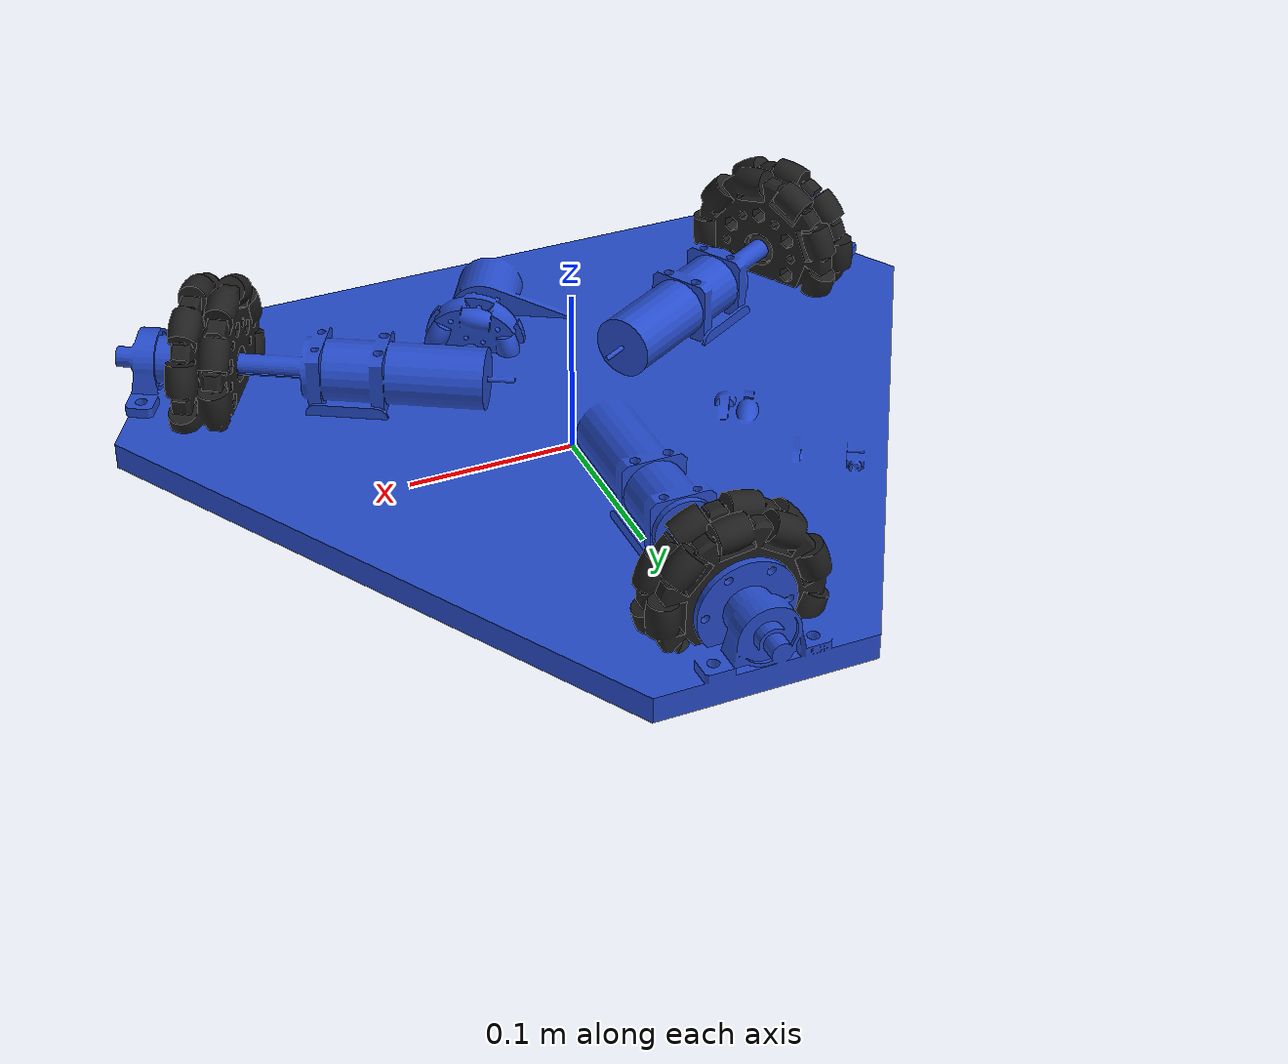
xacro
<?xml version="1.0"?>
<robot name="my_robot" xmlns:xacro="http://www.ros.org/wiki/xacro">

    <!-- Parameters -->
    <xacro:property name="base_width" value="1.0" />
    <xacro:property name="base_mass" value="3.72456877893911" />
    <xacro:property name="wheel_mass" value="0.169060280702519" />
    <xacro:property name="blue_material" value="blue" />
    <xacro:property name="black_material" value="black" />

    <!-- Base Footprint -->
    <link name="base_footprint" />

    <!-- Base Link -->
    <link name="base_link">
        <inertial>
            <origin xyz="0 0 0" rpy="0 0 0" />
            <mass value="${base_mass}" />
            <inertia
                ixx="0.00777824335300896"
                ixy="2.13589194767825E-06"
                ixz="-7.76430486977968E-07"
                iyy="0.00778071037270559"
                iyz="-4.552360831811E-07"
                izz="0.0150156106242929" />
        </inertial>
        <visual>
            <origin xyz="0 0 0" rpy="0 0 0" />
            <geometry>
                <mesh filename="package://my_robot_description/meshes/autobot/base_link.stl" />
            </geometry>
            <material name="${blue_material}" />
        </visual>
        <collision>
            <origin xyz="0 0 0" rpy="0 0 0" />
            <geometry>
                <mesh filename="package://my_robot_description/meshes/autobot/base_link.stl" />
            </geometry>
        </collision>
    </link>

    <joint name="base_joint" type="fixed">
        <parent link="base_footprint" />
        <child link="base_link" />
        <origin xyz="0 0 0.02435" rpy="0 0 0" />
    </joint>

    <!-- Right Wheel -->
    <link name="right_wheel">
        <inertial>
            <origin xyz="0.05023 0 -0.029" rpy="0 0 0" />
            <mass value="${wheel_mass}" />
            <inertia
                ixx="6.81656459654292E-05"
                ixy="1.09934718562429E-16"
                ixz="-1.53690933567199E-05"
                iyy="4.15455954052914E-05"
                iyz="1.9041723013586E-16"
                izz="5.0418945592025E-05" />
        </inertial>
        <visual>
            <origin xyz="0 0 0" rpy="0 0 0" />
            <geometry>
                <mesh filename="package://my_robot_description/meshes/autobot/right_wheel.stl" />
            </geometry>
            <material name="${black_material}" />
        </visual>
        <collision>
            <origin xyz="0 0 0" rpy="0 0 0" />
            <geometry>
                <mesh filename="package://my_robot_description/meshes/autobot/right_wheel.stl" />
            </geometry>
        </collision>
    </link>

    <joint name="rightwheel" type="continuous">
        <origin xyz="0.23043 -0.13304 0.01805" rpy="-1.5708 0 3.1416" />
        <parent link="base_link" />
        <child link="right_wheel" />
        <axis xyz="0.86603 0 -0.5" />
        <limit effort="10" velocity="10" />
        <dynamics damping="0.1" friction="0.1" />
    </joint>

    <!-- Left Wheel -->
    <link name="left_wheel">
        <inertial>
            <origin xyz="-0.05023 0 -0.029" rpy="0 0 0" />
            <mass value="${wheel_mass}" />
            <inertia
                ixx="6.816564596543E-05"
                ixy="1.09821584456127E-16"
                ixz="1.53690933567195E-05"
                iyy="4.15455954052906E-05"
                iyz="-1.90474672857433E-16"
                izz="5.04189455920233E-05" />
        </inertial>
        <visual>
            <origin xyz="0 0 0" rpy="0 0 0" />
            <geometry>
                <mesh filename="package://my_robot_description/meshes/autobot/left_wheel.stl" />
            </geometry>
            <material name="${black_material}" />
        </visual>
        <collision>
            <origin xyz="0 0 0" rpy="0 0 0" />
            <geometry>
                <mesh filename="package://my_robot_description/meshes/autobot/left_wheel.stl" />
            </geometry>
        </collision>
    </link>

    <joint name="leftwheel" type="continuous">
        <origin xyz="-0.23043 -0.13304 0.01805" rpy="-1.5708 0 3.1416" />
        <parent link="base_link" />
        <child link="left_wheel" />
        <axis xyz="-0.86603 0 -0.5" />
        <limit effort="10" velocity="10" />
        <dynamics damping="0.1" friction="0.1" />
    </joint>

    <!-- Front Wheel -->
    <link name="front_wheel">
        <inertial>
            <origin xyz="0 0 -0.058" rpy="0 0 0" />
            <mass value="${wheel_mass}" />
            <inertia
                ixx="4.15455954053262E-05"
                ixy="2.1988501832539E-16"
                ixz="1.00585123725223E-18"
                iyy="4.15455954052956E-05"
                iyz="-1.97888662321666E-19"
                izz="7.70389961521322E-05" />
        </inertial>
        <visual>
            <origin xyz="0 0 0" rpy="0 0 0" />
            <geometry>
                <mesh filename="package://my_robot_description/meshes/autobot/front_wheel.stl" />
            </geometry>
            <material name="${black_material}" />
        </visual>
        <collision>
            <origin xyz="0 0 0" rpy="0 0 0" />
            <geometry>
                <mesh filename="package://my_robot_description/meshes/autobot/front_wheel.stl" />
            </geometry>
        </collision>
    </link>

    <joint name="frontwheel" type="continuous">
        <origin xyz="0 0.26608 0.01805" rpy="-1.5708 0 0" />
        <parent link="base_link" />
        <child link="front_wheel" />
        <axis xyz="0 0 -1" />
        <limit effort="10" velocity="10" />
        <dynamics damping="0.1" friction="0.1" />
    </joint>

</robot>
